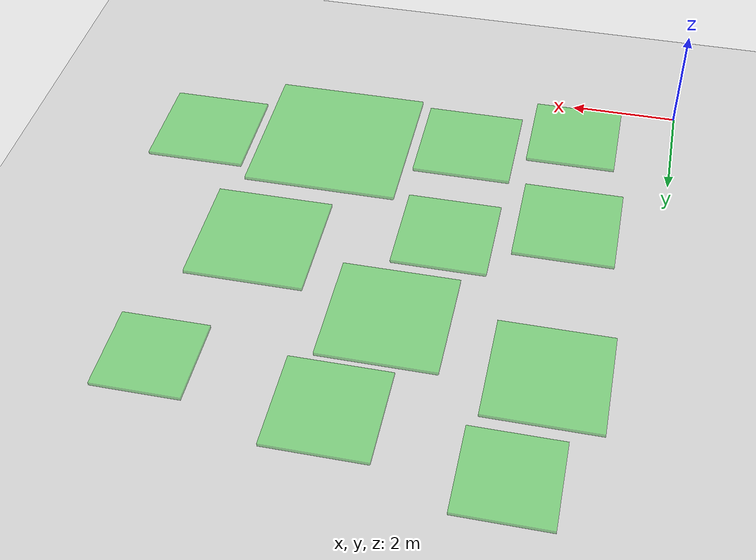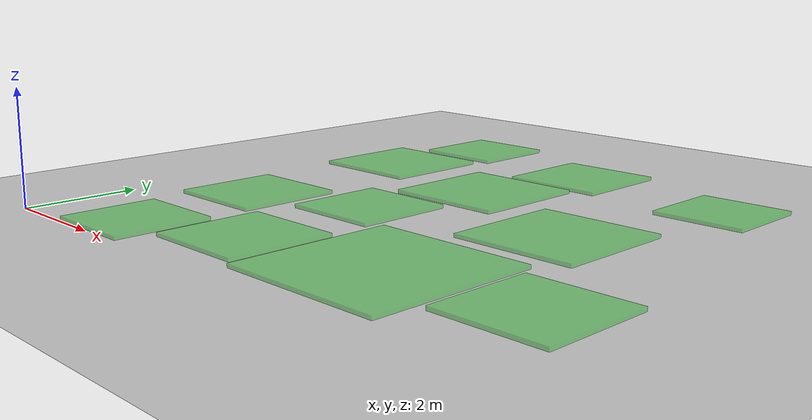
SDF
<sdf version="1.6">
 <world name="square_obstacles">
  <include><uri>model://ground_plane</uri></include>
  <model name="square_0">
   <pose>4.458184612874109 6.263375006316379 0 0 0 0</pose>
   <static>true</static>
   <link name="link">
    <visual name="visual">
     <geometry><box><size>2.1168008894007846 2.1168008894007846 0.1</size></box></geometry>
     <material><ambient>0.2 0.8 0.2 0.5</ambient></material>
    </visual>
   </link>
  </model>
  <model name="square_1">
   <pose>7.160950192606447 4.8716044696399505 0 0 0 0</pose>
   <static>true</static>
   <link name="link">
    <visual name="visual">
     <geometry><box><size>2.1659644078562916 2.1659644078562916 0.1</size></box></geometry>
     <material><ambient>0.2 0.8 0.2 0.5</ambient></material>
    </visual>
   </link>
  </model>
  <model name="square_2">
   <pose>1.7159638432527122 3.4224204834898098 0 0 0 0</pose>
   <static>true</static>
   <link name="link">
    <visual name="visual">
     <geometry><box><size>1.838360479674053 1.838360479674053 0.1</size></box></geometry>
     <material><ambient>0.2 0.8 0.2 0.5</ambient></material>
    </visual>
   </link>
  </model>
  <model name="square_3">
   <pose>8.15102112538327 7.873126144966194 0 0 0 0</pose>
   <static>true</static>
   <link name="link">
    <visual name="visual">
     <geometry><box><size>1.573543672975636 1.573543672975636 0.1</size></box></geometry>
     <material><ambient>0.2 0.8 0.2 0.5</ambient></material>
    </visual>
   </link>
  </model>
  <model name="square_4">
   <pose>6.44501642040106 1.9310490626569687 0 0 0 0</pose>
   <static>true</static>
   <link name="link">
    <visual name="visual">
     <geometry><box><size>2.887704191806634 2.887704191806634 0.1</size></box></geometry>
     <material><ambient>0.2 0.8 0.2 0.5</ambient></material>
    </visual>
   </link>
  </model>
  <model name="square_5">
   <pose>1.6143537138248398 7.006386045680034 0 0 0 0</pose>
   <static>true</static>
   <link name="link">
    <visual name="visual">
     <geometry><box><size>2.02497449873413 2.02497449873413 0.1</size></box></geometry>
     <material><ambient>0.2 0.8 0.2 0.5</ambient></material>
    </visual>
   </link>
  </model>
  <model name="square_6">
   <pose>8.994683550826313 2.1154170964528554 0 0 0 0</pose>
   <static>true</static>
   <link name="link">
    <visual name="visual">
     <geometry><box><size>1.8575661060562907 1.8575661060562907 0.1</size></box></geometry>
     <material><ambient>0.2 0.8 0.2 0.5</ambient></material>
    </visual>
   </link>
  </model>
  <model name="square_7">
   <pose>1.8814461037753194 0.9228270719644037 0 0 0 0</pose>
   <static>true</static>
   <link name="link">
    <visual name="visual">
     <geometry><box><size>1.687037712311499 1.687037712311499 0.1</size></box></geometry>
     <material><ambient>0.2 0.8 0.2 0.5</ambient></material>
    </visual>
   </link>
  </model>
  <model name="square_8">
   <pose>5.006358893915305 8.366797026826934 0 0 0 0</pose>
   <static>true</static>
   <link name="link">
    <visual name="visual">
     <geometry><box><size>1.8111321192383651 1.8111321192383651 0.1</size></box></geometry>
     <material><ambient>0.2 0.8 0.2 0.5</ambient></material>
    </visual>
   </link>
  </model>
  <model name="square_9">
   <pose>1.9653308810541206 9.08507587544755 0 0 0 0</pose>
   <static>true</static>
   <link name="link">
    <visual name="visual">
     <geometry><box><size>1.6335323778699467 1.6335323778699467 0.1</size></box></geometry>
     <material><ambient>0.2 0.8 0.2 0.5</ambient></material>
    </visual>
   </link>
  </model>
  <model name="square_10">
   <pose>3.883363277137115 1.5723362143864172 0 0 0 0</pose>
   <static>true</static>
   <link name="link">
    <visual name="visual">
     <geometry><box><size>1.8518545060706633 1.8518545060706633 0.1</size></box></geometry>
     <material><ambient>0.2 0.8 0.2 0.5</ambient></material>
    </visual>
   </link>
  </model>
  <model name="square_11">
   <pose>3.8551721233697736 4.1069555921026915 0 0 0 0</pose>
   <static>true</static>
   <link name="link">
    <visual name="visual">
     <geometry><box><size>1.733726271461347 1.733726271461347 0.1</size></box></geometry>
     <material><ambient>0.2 0.8 0.2 0.5</ambient></material>
    </visual>
   </link>
  </model>
 </world>
</sdf>
